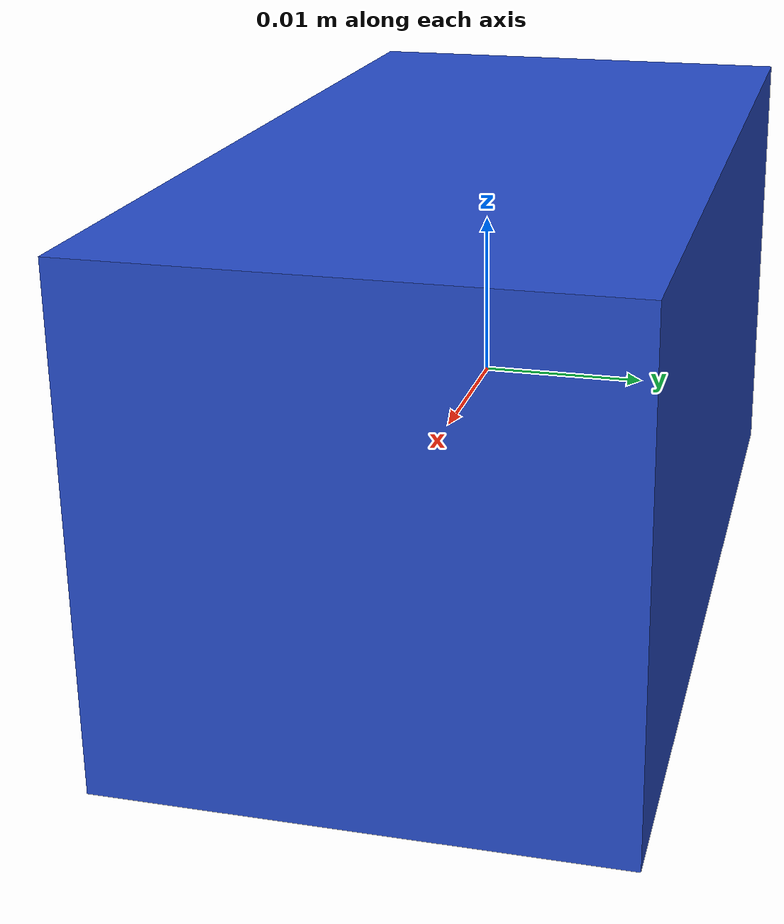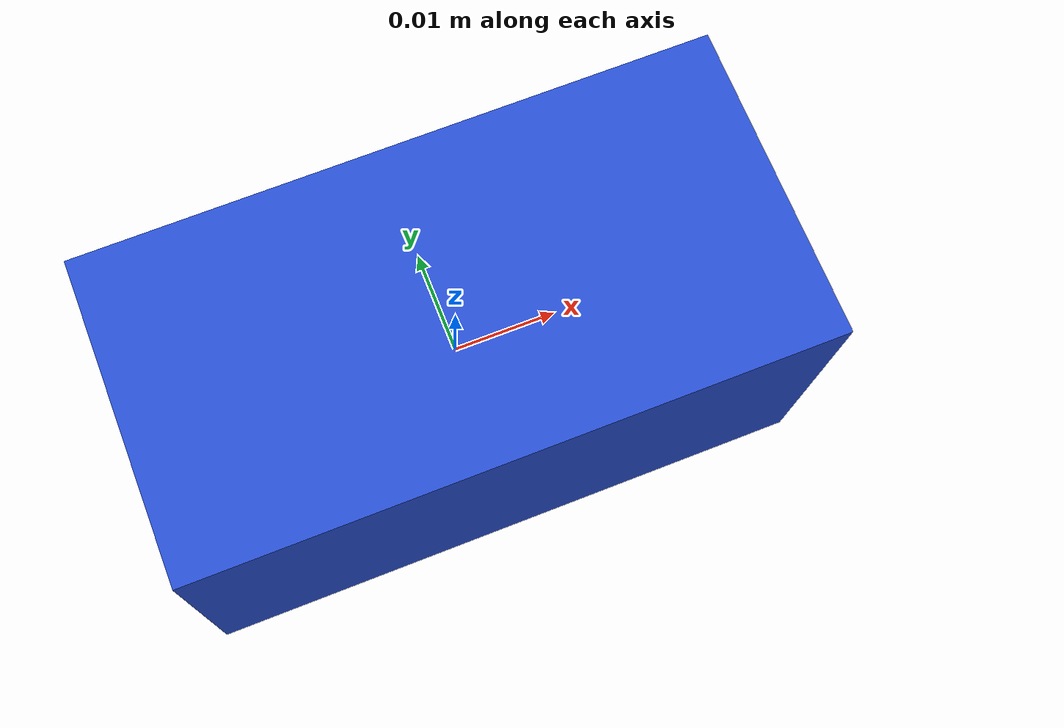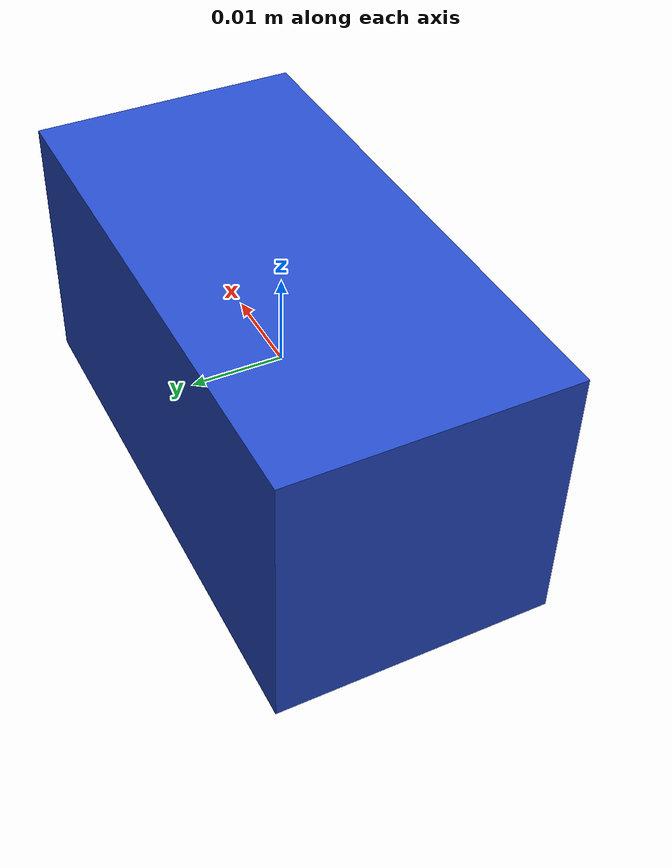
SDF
<?xml version='1.0'?>
<sdf version='1.6'>
  <model name='demo_cube_rojo'>
    <link name='link'>
      <inertial>
        <mass>0.25</mass>
        <inertia>
          <ixx>0.00015</ixx>
          <ixy>0</ixy>
          <ixz>0</ixz>
          <iyy>0.00015</iyy>
          <iyz>0</iyz>
          <izz>0.00015</izz>
        </inertia>
        <pose frame=''>0 0 0 0 -0 0</pose>
      </inertial>
      <velocity_decay>
        <linear>0</linear>
        <angular>0</angular>
      </velocity_decay>
      <self_collide>0</self_collide>
      <kinematic>0</kinematic>
      <gravity>1</gravity>
      <enable_wind>0</enable_wind>
      <pose frame=''>0 0 0 0 -0 0</pose>
      <visual name='visual'>
        <geometry>
          <box>
            <size>0.06 0.03 0.03</size>
          </box>
        </geometry>
        <material>
          <script>
            <uri>file://media/materials/scripts/gazebo.material</uri>
            <name>Gazebo/Blue</name>
          </script>
          <ambient>0.667 0 0 0</ambient>
          <shader type='vertex'>
            <normal_map>__default__</normal_map>
          </shader>
          <diffuse>0.667 0 0 1</diffuse>
          <specular>0.1 0.1 0.1 1</specular>
          <emissive>0 0 0 1</emissive>
        </material>
        <pose frame=''>0 0 0 0 -0 0</pose>
        <transparency>0</transparency>
        <cast_shadows>1</cast_shadows>
      </visual>
      <collision name='collision'>
        <laser_retro>0</laser_retro>
        <max_contacts>10</max_contacts>
        <pose frame=''>0 0 0 0 -0 0</pose>
        <geometry>
          <box>
            <size>0.06 0.06 0.06</size>
          </box>
        </geometry>
        <surface>
          <friction>
            <ode>
              <mu>30</mu>
              <mu2>30</mu2>
              <fdir1>0 0 0</fdir1>
              <slip1>0</slip1>
              <slip2>0</slip2>
            </ode>
            <torsional>
              <coefficient>1</coefficient>
              <patch_radius>0</patch_radius>
              <surface_radius>0</surface_radius>
              <use_patch_radius>1</use_patch_radius>
              <ode>
                <slip>0</slip>
              </ode>
            </torsional>
          </friction>
          <bounce>
            <restitution_coefficient>0</restitution_coefficient>
            <threshold>1e+06</threshold>
          </bounce>
          <contact>
            <collide_without_contact>0</collide_without_contact>
            <collide_without_contact_bitmask>1</collide_without_contact_bitmask>
            <collide_bitmask>1</collide_bitmask>
            <ode>
              <soft_cfm>0</soft_cfm>
              <soft_erp>0.2</soft_erp>
              <kp>1e+06</kp>
              <kd>100</kd>
              <max_vel>1</max_vel>
              <min_depth>0.002</min_depth>
            </ode>
            <bullet>
              <split_impulse>1</split_impulse>
              <split_impulse_penetration_threshold>-0.01</split_impulse_penetration_threshold>
              <soft_cfm>0</soft_cfm>
              <soft_erp>0.2</soft_erp>
              <kp>1e+06</kp>
              <kd>100</kd>
            </bullet>
          </contact>
        </surface>
      </collision>
    </link>
    <static>0</static>
    <allow_auto_disable>1</allow_auto_disable>
  </model>
</sdf>
